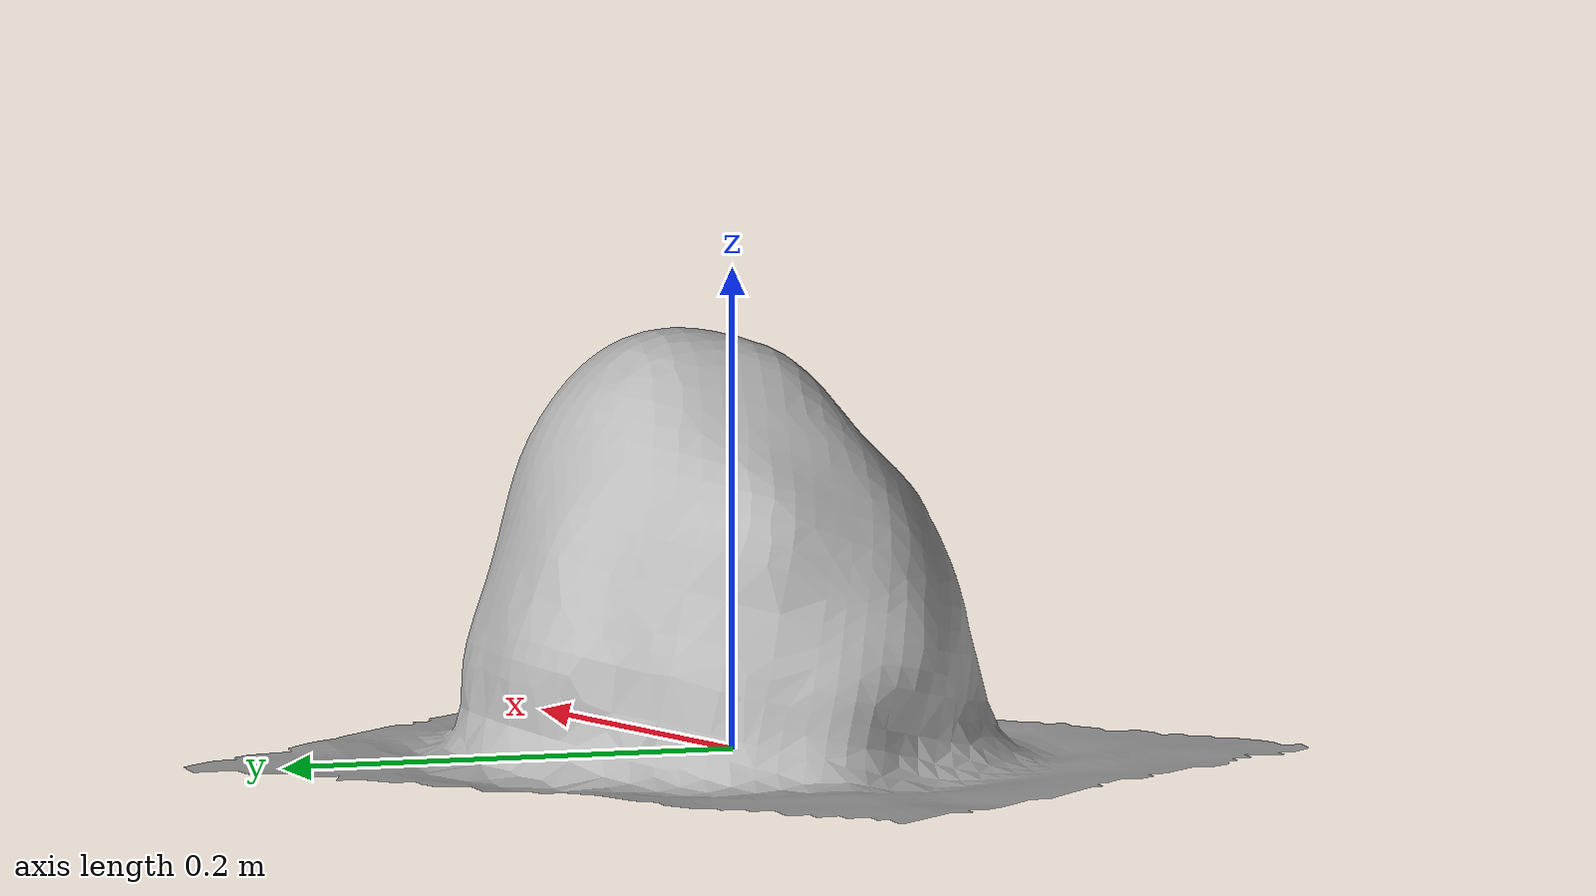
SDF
<?xml version='1.0'?>
<sdf version="1.4">
<model name="rock_5">
  <pose>0 0 0 0 0 0</pose>
  <static>true</static>
    <link name="link">
      <collision name="collision">
          <geometry>
            <mesh><uri>model://rock_5/meshes/rock_5.dae</uri></mesh>
          </geometry>
      </collision>
        <visual name="visual">
          <geometry>
            <mesh><uri>model://rock_5/meshes/rock_5.dae</uri></mesh>
          </geometry>
        </visual>
    </link>
  </model>
</sdf>
